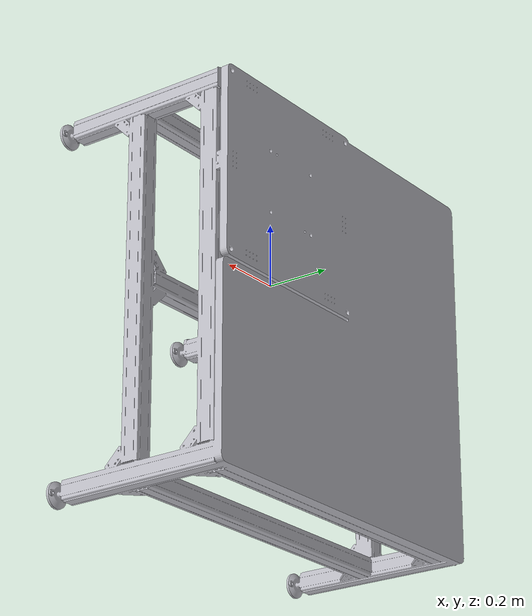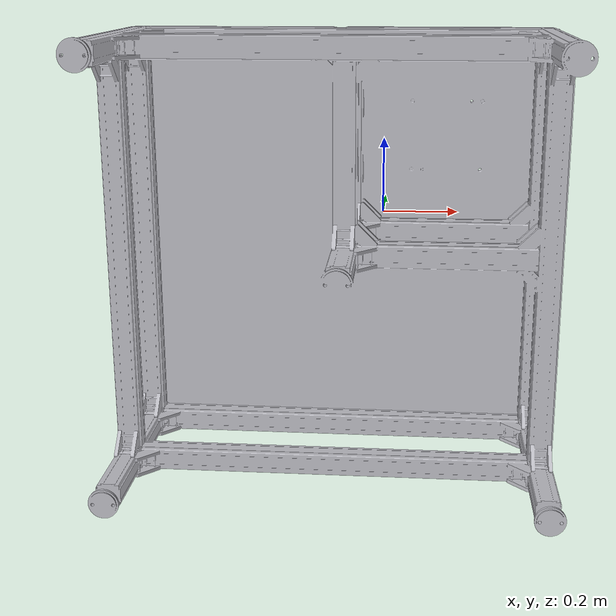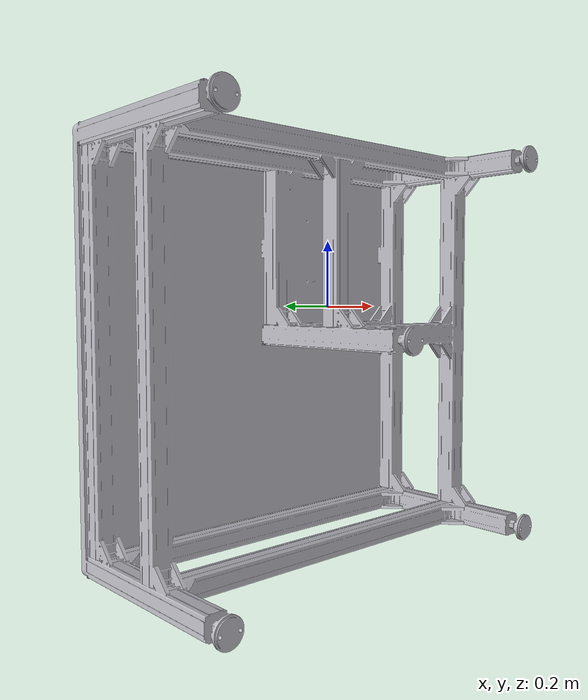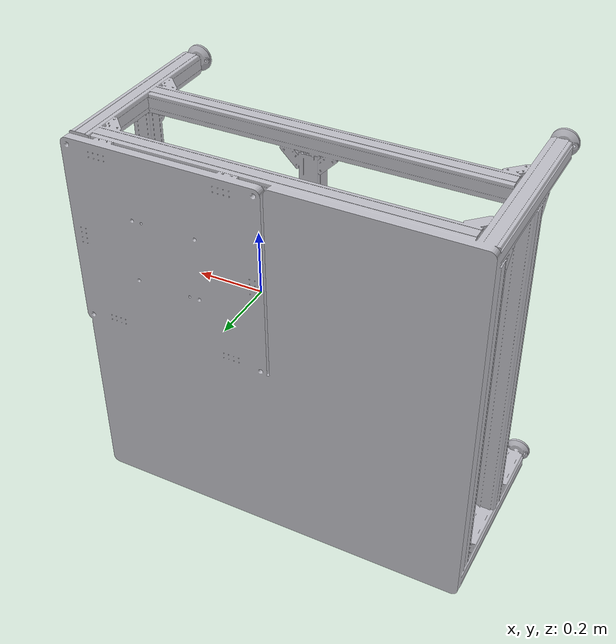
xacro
<?xml version="1.0" ?>
<robot name="env" xmlns:xacro="http://www.ros.org/wiki/xacro" >

  <link name="table_link">
    <visual>
      <origin rpy="0 0 0" xyz="0 0 0"/>
      <geometry>
        <mesh filename="package://mfja_motoman_hc10/meshes/env/table_yaskawa.stl" scale="1 1 1"/>
      </geometry>
      <material name="silver"/>
    </visual>
    <collision>
      <origin rpy="0 0 0" xyz="0 0 0"/>
      <geometry>
        <mesh filename="package://mfja_motoman_hc10/meshes/env/table_yaskawa.stl" scale="1 1 1"/>
      </geometry>
    </collision>
  </link>

</robot>
